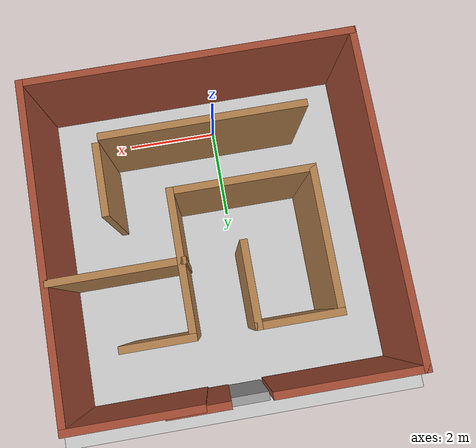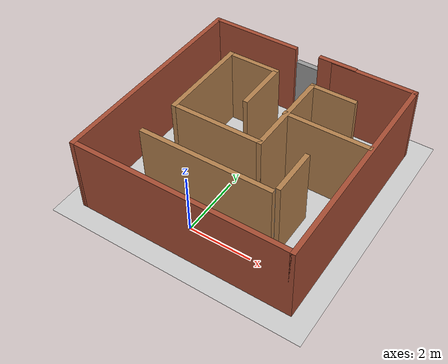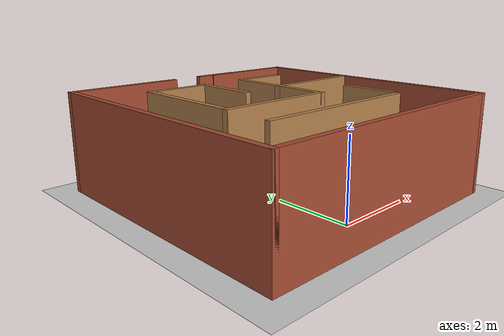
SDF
<sdf version="1.7">
 <world name="default">
  <light name="sun" type="directional">
   <pose>0 0 10 0 -0 0</pose>
   <diffuse>0.8 0.8 0.8 1</diffuse>
   <specular>0.2 0.2 0.2 1</specular>
   <attenuation>
    <range>1000</range>
    <constant>0.9</constant>
    <linear>0.01</linear>
    <quadratic>0.001</quadratic>
   </attenuation>
   <direction>-0.5 0.1 -0.9</direction>
   <spot><inner_angle>0</inner_angle><outer_angle>0</outer_angle><falloff>0</falloff></spot>
  </light>
  <model name="ground_plane">
   <static>1</static>
   <link name="link">
    <collision name="collision">
     <geometry><plane><normal>0 0 1</normal><size>100 100</size></plane></geometry>
     <surface><friction><ode><mu>100</mu><mu2>50</mu2></ode></friction></surface>
    </collision>
    <visual name="visual">
     <cast_shadows>0</cast_shadows>
     <geometry><plane><normal>0 0 1</normal><size>100 100</size></plane></geometry>
     <material>
      <script><uri>file://media/materials/scripts/gazebo.material</uri><name>Gazebo/Grey</name></script>
     </material>
    </visual>
   </link>
  </model>
  <gravity>0 0 -9.8</gravity>
  <magnetic_field>6e-06 2.3e-05 -4.2e-05</magnetic_field>
  <atmosphere type="adiabatic"/>
  <physics type="ode">
   <max_step_size>0.001</max_step_size>
   <real_time_factor>1</real_time_factor>
   <real_time_update_rate>1000</real_time_update_rate>
  </physics>
  <scene><ambient>0.4 0.4 0.4 1</ambient><background>0.7 0.7 0.7 1</background><shadows>1</shadows></scene>
  <audio><device>default</device></audio>
  <spherical_coordinates>
   <surface_model>EARTH_WGS84</surface_model>
   <latitude_deg>0</latitude_deg>
   <longitude_deg>0</longitude_deg>
   <elevation>0</elevation>
   <heading_deg>0</heading_deg>
  </spherical_coordinates>
  <model name="maze_1">
   <pose>0.370427 2.54698 0 0 -0 0</pose>
   <link name="Door_0">
    <collision name="Door_0_Collision">
     <geometry><box><size>0.9 0.17 2</size></box></geometry>
     <pose>0 0 1 0 -0 0</pose>
    </collision>
    <visual name="Door_0_Visual">
     <pose>0 0 1 0 -0 0</pose>
     <geometry><box><size>0.9 0.17 2</size></box></geometry>
     <material>
      <script><uri>file://media/materials/scripts/gazebo.material</uri><name>Gazebo/Grey</name></script>
     </material>
    </visual>
    <pose>-0.020175 3.4649 0 0 -0 0</pose>
   </link>
   <link name="Wall_0">
    <collision name="Wall_0_Collision">
     <geometry><box><size>3 0.15 2.5</size></box></geometry>
     <pose>0 0 1.25 0 -0 0</pose>
    </collision>
    <visual name="Wall_0_Visual">
     <pose>0 0 1.25 0 -0 0</pose>
     <geometry><box><size>3 0.15 2.5</size></box></geometry>
     <material>
      <script><uri>file://media/materials/scripts/gazebo.material</uri><name>Gazebo/Bricks</name></script>
      <ambient>1 1 1 1</ambient>
     </material>
     <meta><layer>0</layer></meta>
    </visual>
    <pose>-2 3.4117 0 0 -0 0</pose>
   </link>
   <link name="Wall_11">
    <collision name="Wall_11_Collision">
     <geometry><box><size>1.5 0.15 2.5</size></box></geometry>
     <pose>0 0 1.25 0 -0 0</pose>
    </collision>
    <visual name="Wall_11_Visual">
     <pose>0 0 1.25 0 -0 0</pose>
     <geometry><box><size>1.5 0.15 2.5</size></box></geometry>
     <material>
      <script><uri>file://media/materials/scripts/gazebo.material</uri><name>Gazebo/Wood</name></script>
      <ambient>1 1 1 1</ambient>
     </material>
     <meta><layer>0</layer></meta>
    </visual>
    <pose>2.08124 -1.20013 0 0 -0 -1.5708</pose>
   </link>
   <link name="Wall_13">
    <collision name="Wall_13_Collision">
     <geometry><box><size>3 0.15 2.5</size></box></geometry>
     <pose>0 0 1.25 0 -0 0</pose>
    </collision>
    <visual name="Wall_13_Visual">
     <pose>0 0 1.25 0 -0 0</pose>
     <geometry><box><size>3 0.15 2.5</size></box></geometry>
     <material>
      <script><uri>file://media/materials/scripts/gazebo.material</uri><name>Gazebo/Wood</name></script>
      <ambient>1 1 1 1</ambient>
     </material>
     <meta><layer>0</layer></meta>
    </visual>
    <pose>-0.64339 -0.737931 0 0 -0 0</pose>
   </link>
   <link name="Wall_14">
    <collision name="Wall_14_Collision">
     <geometry><box><size>3 0.15 2.5</size></box></geometry>
     <pose>0 0 1.25 0 -0 0</pose>
    </collision>
    <visual name="Wall_14_Visual">
     <pose>0 0 1.25 0 -0 0</pose>
     <geometry><box><size>3 0.15 2.5</size></box></geometry>
     <material>
      <script><uri>file://media/materials/scripts/gazebo.material</uri><name>Gazebo/Wood</name></script>
      <ambient>1 1 1 1</ambient>
     </material>
     <meta><layer>0</layer></meta>
    </visual>
    <pose>0.78161 0.687069 0 0 -0 1.5708</pose>
   </link>
   <link name="Wall_15">
    <collision name="Wall_15_Collision">
     <geometry><box><size>1.5 0.15 2.5</size></box></geometry>
     <pose>0 0 1.25 0 -0 0</pose>
    </collision>
    <visual name="Wall_15_Visual">
     <pose>0 0 1.25 0 -0 0</pose>
     <geometry><box><size>1.5 0.15 2.5</size></box></geometry>
     <material>
      <script><uri>file://media/materials/scripts/gazebo.material</uri><name>Gazebo/Wood</name></script>
      <ambient>1 1 1 1</ambient>
     </material>
     <meta><layer>0</layer></meta>
    </visual>
    <pose>1.45661 2.11207 0 0 -0 0</pose>
   </link>
   <link name="Wall_17">
    <collision name="Wall_17_Collision">
     <geometry><box><size>2.75 0.15 2.5</size></box></geometry>
     <pose>0 0 1.25 0 -0 0</pose>
    </collision>
    <visual name="Wall_17_Visual">
     <pose>0 0 1.25 0 -0 0</pose>
     <geometry><box><size>2.75 0.15 2.5</size></box></geometry>
     <material>
      <script><uri>file://media/materials/scripts/gazebo.material</uri><name>Gazebo/Wood</name></script>
      <ambient>1 1 1 1</ambient>
     </material>
     <meta><layer>0</layer></meta>
    </visual>
    <pose>2.05123 0.645279 0 0 -0 0</pose>
   </link>
   <link name="Wall_19">
    <collision name="Wall_19_Collision">
     <geometry><box><size>3 0.15 2.5</size></box></geometry>
     <pose>0 0 1.25 0 -0 0</pose>
    </collision>
    <visual name="Wall_19_Visual">
     <pose>0 0 1.25 0 -0 0</pose>
     <geometry><box><size>3 0.15 2.5</size></box></geometry>
     <material>
      <script><uri>file://media/materials/scripts/gazebo.material</uri><name>Gazebo/Wood</name></script>
      <ambient>1 1 1 1</ambient>
     </material>
     <meta><layer>0</layer></meta>
    </visual>
    <pose>-2.06839 0.687069 0 0 -0 1.5708</pose>
   </link>
   <link name="Wall_2">
    <collision name="Wall_2_Collision">
     <geometry><box><size>7 0.15 2.5</size></box></geometry>
     <pose>0 0 1.25 0 -0 0</pose>
    </collision>
    <visual name="Wall_2_Visual">
     <pose>0 0 1.25 0 -0 0</pose>
     <geometry><box><size>7 0.15 2.5</size></box></geometry>
     <material>
      <script><uri>file://media/materials/scripts/gazebo.material</uri><name>Gazebo/Bricks</name></script>
      <ambient>1 1 1 1</ambient>
     </material>
     <meta><layer>0</layer></meta>
    </visual>
    <pose>-3.425 -0.0133 0 0 -0 -1.5708</pose>
   </link>
   <link name="Wall_20">
    <collision name="Wall_20_Collision">
     <geometry><box><size>1.75 0.15 2.5</size></box></geometry>
     <pose>0 0 1.25 0 -0 0</pose>
    </collision>
    <visual name="Wall_20_Visual">
     <pose>0 0 1.25 0 -0 0</pose>
     <geometry><box><size>1.75 0.15 2.5</size></box></geometry>
     <material>
      <script><uri>file://media/materials/scripts/gazebo.material</uri><name>Gazebo/Wood</name></script>
      <ambient>1 1 1 1</ambient>
     </material>
     <meta><layer>0</layer></meta>
    </visual>
    <pose>-1.26839 2.11207 0 0 -0 0</pose>
   </link>
   <link name="Wall_22">
    <collision name="Wall_22_Collision">
     <geometry><box><size>1.75 0.15 2.5</size></box></geometry>
     <pose>0 0 1.25 0 -0 0</pose>
    </collision>
    <visual name="Wall_22_Visual">
     <pose>0 0 1.25 0 -0 0</pose>
     <geometry><box><size>1.75 0.15 2.5</size></box></geometry>
     <material>
      <script><uri>file://media/materials/scripts/gazebo.material</uri><name>Gazebo/Wood</name></script>
      <ambient>1 1 1 1</ambient>
     </material>
     <meta><layer>0</layer></meta>
    </visual>
    <pose>-0.46839 1.31207 0 0 -0 -1.5708</pose>
   </link>
   <link name="Wall_24">
    <collision name="Wall_24_Collision">
     <geometry><box><size>1.25 0.15 2.5</size></box></geometry>
     <pose>0 0 1.25 0 -0 0</pose>
    </collision>
    <visual name="Wall_24_Visual">
     <pose>0 0 1.25 0 -0 0</pose>
     <geometry><box><size>1.25 0.15 2.5</size></box></geometry>
     <material>
      <script><uri>file://media/materials/scripts/gazebo.material</uri><name>Gazebo/Bricks</name></script>
      <ambient>1 1 1 1</ambient>
     </material>
     <meta><layer>0</layer></meta>
    </visual>
    <pose>0.902228 3.4383 0 0 -0 0</pose>
   </link>
   <link name="Wall_3">
    <collision name="Wall_3_Collision">
     <geometry><box><size>7 0.15 2.5</size></box></geometry>
     <pose>0 0 1.25 0 -0 0</pose>
    </collision>
    <visual name="Wall_3_Visual">
     <pose>0 0 1.25 0 -0 0</pose>
     <geometry><box><size>7 0.15 2.5</size></box></geometry>
     <material>
      <script><uri>file://media/materials/scripts/gazebo.material</uri><name>Gazebo/Bricks</name></script>
      <ambient>1 1 1 1</ambient>
     </material>
     <meta><layer>0</layer></meta>
    </visual>
    <pose>-0 -3.4383 0 0 -0 0</pose>
   </link>
   <link name="Wall_4">
    <collision name="Wall_4_Collision">
     <geometry><box><size>7 0.15 2.5</size></box></geometry>
     <pose>0 0 1.25 0 -0 0</pose>
    </collision>
    <visual name="Wall_4_Visual">
     <pose>0 0 1.25 0 -0 0</pose>
     <geometry><box><size>7 0.15 2.5</size></box></geometry>
     <material>
      <script><uri>file://media/materials/scripts/gazebo.material</uri><name>Gazebo/Bricks</name></script>
      <ambient>1 1 1 1</ambient>
     </material>
     <meta><layer>0</layer></meta>
    </visual>
    <pose>3.425 -0.0133 0 0 -0 1.5708</pose>
   </link>
   <link name="Wall_5">
    <collision name="Wall_5_Collision">
     <geometry><box><size>2.75 0.15 2.5</size></box></geometry>
     <pose>0 0 1.25 0 -0 0</pose>
    </collision>
    <visual name="Wall_5_Visual">
     <pose>0 0 1.25 0 -0 0</pose>
     <geometry><box><size>2.75 0.15 2.5</size></box></geometry>
     <material>
      <script><uri>file://media/materials/scripts/gazebo.material</uri><name>Gazebo/Bricks</name></script>
      <ambient>1 1 1 1</ambient>
     </material>
     <meta><layer>0</layer></meta>
    </visual>
    <pose>2.125 3.4117 0 0 -0 3.14159</pose>
   </link>
   <link name="Wall_8">
    <collision name="Wall_8_Collision">
     <geometry><box><size>4.25 0.15 2.5</size></box></geometry>
     <pose>0 0 1.25 0 -0 0</pose>
    </collision>
    <visual name="Wall_8_Visual">
     <pose>0 0 1.25 0 -0 0</pose>
     <geometry><box><size>4.25 0.15 2.5</size></box></geometry>
     <material>
      <script><uri>file://media/materials/scripts/gazebo.material</uri><name>Gazebo/Wood</name></script>
      <ambient>1 1 1 1</ambient>
     </material>
     <meta><layer>0</layer></meta>
    </visual>
    <pose>-0.098191 -2.06794 0 0 -0 0</pose>
   </link>
   <static>1</static>
  </model>
 </world>
</sdf>
